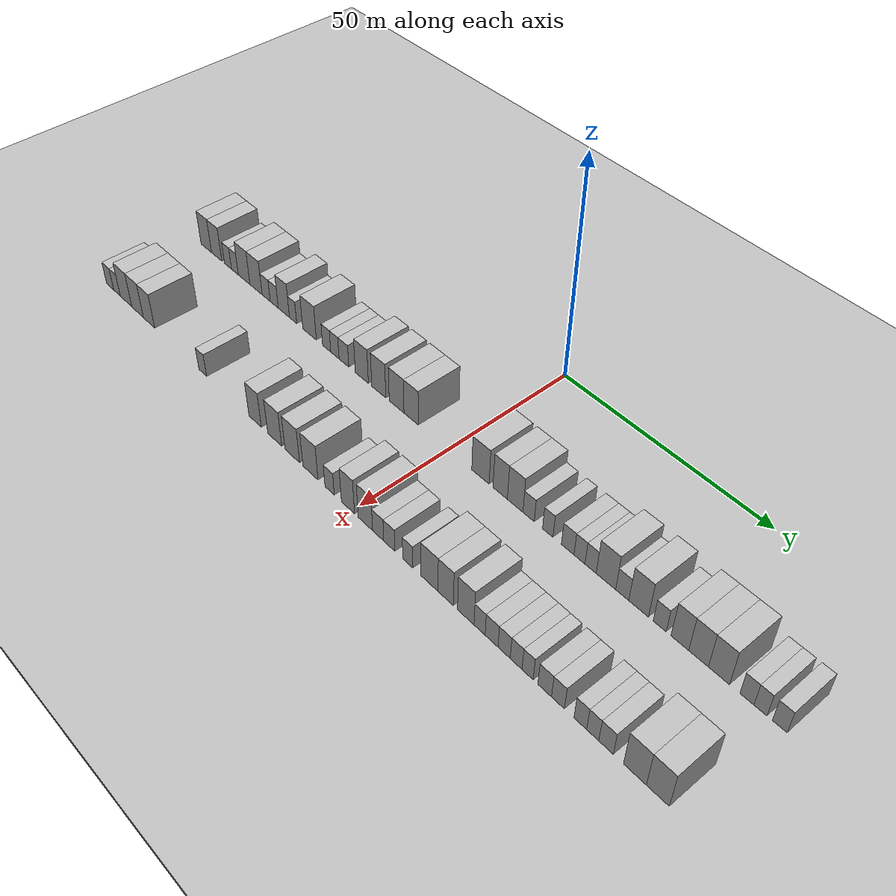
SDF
<sdf version="1.6">
 <world name="default">
  <include><name>ground_plane_1</name><uri>model://HANNAS_ground_plane</uri></include>
  <include>
   <name>ground_plane_2</name>
   <uri>model://HANNAS_ground_plane</uri>
   <pose>100 0 0  0 0 0</pose>
  </include>
  <model name="building_35">
   <static>1</static>
   <pose>25.0000 -76.7414 0 0.000000 0.000000 0.000000</pose>
   <link name="link">
    <pose>0 0 4.50 0 0 0</pose>
    <collision name="collision"><geometry><box><size>10.0000 3.9010 9.0000</size></box></geometry></collision>
    <visual name="visual">
     <cast_shadows>0</cast_shadows>
     <geometry><box><size>10.0000 3.9010 9.0000</size></box></geometry>
     <material>
      <script>
       <uri>model://HANNAS_wall/materials/scripts</uri>
       <uri>model://HANNAS_wall/materials/textures</uri>
       <name>vrc/HANNAS_wall</name>
      </script>
     </material>
    </visual>
   </link>
  </model>
  <model name="building_36">
   <static>1</static>
   <pose>25.0000 -72.8850 0 0.000000 0.000000 0.000000</pose>
   <link name="link">
    <pose>0 0 4.50 0 0 0</pose>
    <collision name="collision"><geometry><box><size>10.0000 3.8118 9.0000</size></box></geometry></collision>
    <visual name="visual">
     <cast_shadows>0</cast_shadows>
     <geometry><box><size>10.0000 3.8118 9.0000</size></box></geometry>
     <material>
      <script>
       <uri>model://HANNAS_wall/materials/scripts</uri>
       <uri>model://HANNAS_wall/materials/textures</uri>
       <name>vrc/HANNAS_wall</name>
      </script>
     </material>
    </visual>
   </link>
  </model>
  <model name="building_37">
   <static>1</static>
   <pose>25.0000 -68.7060 0 0.000000 0.000000 0.000000</pose>
   <link name="link">
    <pose>0 0 3.00 0 0 0</pose>
    <collision name="collision"><geometry><box><size>10.0000 2.5461 6.0000</size></box></geometry></collision>
    <visual name="visual">
     <cast_shadows>0</cast_shadows>
     <geometry><box><size>10.0000 2.5461 6.0000</size></box></geometry>
     <material>
      <script>
       <uri>model://HANNAS_wall/materials/scripts</uri>
       <uri>model://HANNAS_wall/materials/textures</uri>
       <name>vrc/HANNAS_wall</name>
      </script>
     </material>
    </visual>
   </link>
  </model>
  <model name="building_38">
   <static>1</static>
   <pose>25.0000 -66.1993 0 0.000000 0.000000 0.000000</pose>
   <link name="link">
    <pose>0 0 3.00 0 0 0</pose>
    <collision name="collision"><geometry><box><size>10.0000 2.4673 6.0000</size></box></geometry></collision>
    <visual name="visual">
     <cast_shadows>0</cast_shadows>
     <geometry><box><size>10.0000 2.4673 6.0000</size></box></geometry>
     <material>
      <script>
       <uri>model://HANNAS_wall/materials/scripts</uri>
       <uri>model://HANNAS_wall/materials/textures</uri>
       <name>vrc/HANNAS_wall</name>
      </script>
     </material>
    </visual>
   </link>
  </model>
  <model name="building_39">
   <static>1</static>
   <pose>25.0000 -62.8955 0 0.000000 0.000000 0.000000</pose>
   <link name="link">
    <pose>0 0 4.50 0 0 0</pose>
    <collision name="collision"><geometry><box><size>10.0000 4.1402 9.0000</size></box></geometry></collision>
    <visual name="visual">
     <cast_shadows>0</cast_shadows>
     <geometry><box><size>10.0000 4.1402 9.0000</size></box></geometry>
     <material>
      <script>
       <uri>model://HANNAS_wall/materials/scripts</uri>
       <uri>model://HANNAS_wall/materials/textures</uri>
       <name>vrc/HANNAS_wall</name>
      </script>
     </material>
    </visual>
   </link>
  </model>
  <model name="building_40">
   <static>1</static>
   <pose>25.0000 -58.6949 0 0.000000 0.000000 0.000000</pose>
   <link name="link">
    <pose>0 0 4.50 0 0 0</pose>
    <collision name="collision"><geometry><box><size>10.0000 4.2610 9.0000</size></box></geometry></collision>
    <visual name="visual">
     <cast_shadows>0</cast_shadows>
     <geometry><box><size>10.0000 4.2610 9.0000</size></box></geometry>
     <material>
      <script>
       <uri>model://HANNAS_wall/materials/scripts</uri>
       <uri>model://HANNAS_wall/materials/textures</uri>
       <name>vrc/HANNAS_wall</name>
      </script>
     </material>
    </visual>
   </link>
  </model>
  <model name="building_41">
   <static>1</static>
   <pose>25.0000 -55.1696 0 0.000000 0.000000 0.000000</pose>
   <link name="link">
    <pose>0 0 3.00 0 0 0</pose>
    <collision name="collision"><geometry><box><size>10.0000 2.7897 6.0000</size></box></geometry></collision>
    <visual name="visual">
     <cast_shadows>0</cast_shadows>
     <geometry><box><size>10.0000 2.7897 6.0000</size></box></geometry>
     <material>
      <script>
       <uri>model://HANNAS_wall/materials/scripts</uri>
       <uri>model://HANNAS_wall/materials/textures</uri>
       <name>vrc/HANNAS_wall</name>
      </script>
     </material>
    </visual>
   </link>
  </model>
  <model name="building_42">
   <static>1</static>
   <pose>25.0000 -52.3973 0 0.000000 0.000000 0.000000</pose>
   <link name="link">
    <pose>0 0 3.00 0 0 0</pose>
    <collision name="collision"><geometry><box><size>10.0000 2.7547 6.0000</size></box></geometry></collision>
    <visual name="visual">
     <cast_shadows>0</cast_shadows>
     <geometry><box><size>10.0000 2.7547 6.0000</size></box></geometry>
     <material>
      <script>
       <uri>model://HANNAS_wall/materials/scripts</uri>
       <uri>model://HANNAS_wall/materials/textures</uri>
       <name>vrc/HANNAS_wall</name>
      </script>
     </material>
    </visual>
   </link>
  </model>
  <model name="building_43">
   <static>1</static>
   <pose>25.0000 -49.1457 0 0.000000 0.000000 0.000000</pose>
   <link name="link">
    <pose>0 0 4.50 0 0 0</pose>
    <collision name="collision"><geometry><box><size>10.0000 3.7485 9.0000</size></box></geometry></collision>
    <visual name="visual">
     <cast_shadows>0</cast_shadows>
     <geometry><box><size>10.0000 3.7485 9.0000</size></box></geometry>
     <material>
      <script>
       <uri>model://HANNAS_wall/materials/scripts</uri>
       <uri>model://HANNAS_wall/materials/textures</uri>
       <name>vrc/HANNAS_wall</name>
      </script>
     </material>
    </visual>
   </link>
  </model>
  <model name="building_44">
   <static>1</static>
   <pose>25.0000 -46.0696 0 0.000000 0.000000 0.000000</pose>
   <link name="link">
    <pose>0 0 3.00 0 0 0</pose>
    <collision name="collision"><geometry><box><size>10.0000 2.4039 6.0000</size></box></geometry></collision>
    <visual name="visual">
     <cast_shadows>0</cast_shadows>
     <geometry><box><size>10.0000 2.4039 6.0000</size></box></geometry>
     <material>
      <script>
       <uri>model://HANNAS_wall/materials/scripts</uri>
       <uri>model://HANNAS_wall/materials/textures</uri>
       <name>vrc/HANNAS_wall</name>
      </script>
     </material>
    </visual>
   </link>
  </model>
  <model name="building_45">
   <static>1</static>
   <pose>25.0000 -40.6697 0 0.000000 0.000000 0.000000</pose>
   <link name="link">
    <pose>0 0 4.50 0 0 0</pose>
    <collision name="collision"><geometry><box><size>10.0000 4.3959 9.0000</size></box></geometry></collision>
    <visual name="visual">
     <cast_shadows>0</cast_shadows>
     <geometry><box><size>10.0000 4.3959 9.0000</size></box></geometry>
     <material>
      <script>
       <uri>model://HANNAS_wall/materials/scripts</uri>
       <uri>model://HANNAS_wall/materials/textures</uri>
       <name>vrc/HANNAS_wall</name>
      </script>
     </material>
    </visual>
   </link>
  </model>
  <model name="building_46">
   <static>1</static>
   <pose>25.0000 -35.1803 0 0.000000 0.000000 0.000000</pose>
   <link name="link">
    <pose>0 0 3.00 0 0 0</pose>
    <collision name="collision"><geometry><box><size>10.0000 2.5829 6.0000</size></box></geometry></collision>
    <visual name="visual">
     <cast_shadows>0</cast_shadows>
     <geometry><box><size>10.0000 2.5829 6.0000</size></box></geometry>
     <material>
      <script>
       <uri>model://HANNAS_wall/materials/scripts</uri>
       <uri>model://HANNAS_wall/materials/textures</uri>
       <name>vrc/HANNAS_wall</name>
      </script>
     </material>
    </visual>
   </link>
  </model>
  <model name="building_47">
   <static>1</static>
   <pose>25.0000 -32.5842 0 0.000000 0.000000 0.000000</pose>
   <link name="link">
    <pose>0 0 3.00 0 0 0</pose>
    <collision name="collision"><geometry><box><size>10.0000 2.6093 6.0000</size></box></geometry></collision>
    <visual name="visual">
     <cast_shadows>0</cast_shadows>
     <geometry><box><size>10.0000 2.6093 6.0000</size></box></geometry>
     <material>
      <script>
       <uri>model://HANNAS_wall/materials/scripts</uri>
       <uri>model://HANNAS_wall/materials/textures</uri>
       <name>vrc/HANNAS_wall</name>
      </script>
     </material>
    </visual>
   </link>
  </model>
  <model name="building_48">
   <static>1</static>
   <pose>25.0000 -29.7806 0 0.000000 0.000000 0.000000</pose>
   <link name="link">
    <pose>0 0 3.00 0 0 0</pose>
    <collision name="collision"><geometry><box><size>10.0000 2.9979 6.0000</size></box></geometry></collision>
    <visual name="visual">
     <cast_shadows>0</cast_shadows>
     <geometry><box><size>10.0000 2.9979 6.0000</size></box></geometry>
     <material>
      <script>
       <uri>model://HANNAS_wall/materials/scripts</uri>
       <uri>model://HANNAS_wall/materials/textures</uri>
       <name>vrc/HANNAS_wall</name>
      </script>
     </material>
    </visual>
   </link>
  </model>
  <model name="building_49">
   <static>1</static>
   <pose>25.0000 -24.3075 0 0.000000 0.000000 0.000000</pose>
   <link name="link">
    <pose>0 0 4.50 0 0 0</pose>
    <collision name="collision"><geometry><box><size>10.0000 3.9484 9.0000</size></box></geometry></collision>
    <visual name="visual">
     <cast_shadows>0</cast_shadows>
     <geometry><box><size>10.0000 3.9484 9.0000</size></box></geometry>
     <material>
      <script>
       <uri>model://HANNAS_wall/materials/scripts</uri>
       <uri>model://HANNAS_wall/materials/textures</uri>
       <name>vrc/HANNAS_wall</name>
      </script>
     </material>
    </visual>
   </link>
  </model>
  <model name="building_50">
   <static>1</static>
   <pose>25.0000 -19.2536 0 0.000000 0.000000 0.000000</pose>
   <link name="link">
    <pose>0 0 4.50 0 0 0</pose>
    <collision name="collision"><geometry><box><size>10.0000 4.1594 9.0000</size></box></geometry></collision>
    <visual name="visual">
     <cast_shadows>0</cast_shadows>
     <geometry><box><size>10.0000 4.1594 9.0000</size></box></geometry>
     <material>
      <script>
       <uri>model://HANNAS_wall/materials/scripts</uri>
       <uri>model://HANNAS_wall/materials/textures</uri>
       <name>vrc/HANNAS_wall</name>
      </script>
     </material>
    </visual>
   </link>
  </model>
  <model name="building_51">
   <static>1</static>
   <pose>25.0000 -14.0435 0 0.000000 0.000000 0.000000</pose>
   <link name="link">
    <pose>0 0 4.50 0 0 0</pose>
    <collision name="collision"><geometry><box><size>10.0000 4.2608 9.0000</size></box></geometry></collision>
    <visual name="visual">
     <cast_shadows>0</cast_shadows>
     <geometry><box><size>10.0000 4.2608 9.0000</size></box></geometry>
     <material>
      <script>
       <uri>model://HANNAS_wall/materials/scripts</uri>
       <uri>model://HANNAS_wall/materials/textures</uri>
       <name>vrc/HANNAS_wall</name>
      </script>
     </material>
    </visual>
   </link>
  </model>
  <model name="building_52">
   <static>1</static>
   <pose>25.0000 -9.8826 0 0.000000 0.000000 0.000000</pose>
   <link name="link">
    <pose>0 0 4.50 0 0 0</pose>
    <collision name="collision"><geometry><box><size>10.0000 4.0610 9.0000</size></box></geometry></collision>
    <visual name="visual">
     <cast_shadows>0</cast_shadows>
     <geometry><box><size>10.0000 4.0610 9.0000</size></box></geometry>
     <material>
      <script>
       <uri>model://HANNAS_wall/materials/scripts</uri>
       <uri>model://HANNAS_wall/materials/textures</uri>
       <name>vrc/HANNAS_wall</name>
      </script>
     </material>
    </visual>
   </link>
  </model>
  <model name="building_53">
   <static>1</static>
   <pose>25.0000 8.8941 0 0.000000 0.000000 0.000000</pose>
   <link name="link">
    <pose>0 0 4.50 0 0 0</pose>
    <collision name="collision"><geometry><box><size>10.0000 4.4974 9.0000</size></box></geometry></collision>
    <visual name="visual">
     <cast_shadows>0</cast_shadows>
     <geometry><box><size>10.0000 4.4974 9.0000</size></box></geometry>
     <material>
      <script>
       <uri>model://HANNAS_wall/materials/scripts</uri>
       <uri>model://HANNAS_wall/materials/textures</uri>
       <name>vrc/HANNAS_wall</name>
      </script>
     </material>
    </visual>
   </link>
  </model>
  <model name="building_54">
   <static>1</static>
   <pose>25.0000 13.9583 0 0.000000 0.000000 0.000000</pose>
   <link name="link">
    <pose>0 0 4.50 0 0 0</pose>
    <collision name="collision"><geometry><box><size>10.0000 3.6309 9.0000</size></box></geometry></collision>
    <visual name="visual">
     <cast_shadows>0</cast_shadows>
     <geometry><box><size>10.0000 3.6309 9.0000</size></box></geometry>
     <material>
      <script>
       <uri>model://HANNAS_wall/materials/scripts</uri>
       <uri>model://HANNAS_wall/materials/textures</uri>
       <name>vrc/HANNAS_wall</name>
      </script>
     </material>
    </visual>
   </link>
  </model>
  <model name="building_55">
   <static>1</static>
   <pose>25.0000 17.7130 0 0.000000 0.000000 0.000000</pose>
   <link name="link">
    <pose>0 0 4.50 0 0 0</pose>
    <collision name="collision"><geometry><box><size>10.0000 3.8784 9.0000</size></box></geometry></collision>
    <visual name="visual">
     <cast_shadows>0</cast_shadows>
     <geometry><box><size>10.0000 3.8784 9.0000</size></box></geometry>
     <material>
      <script>
       <uri>model://HANNAS_wall/materials/scripts</uri>
       <uri>model://HANNAS_wall/materials/textures</uri>
       <name>vrc/HANNAS_wall</name>
      </script>
     </material>
    </visual>
   </link>
  </model>
  <model name="building_56">
   <static>1</static>
   <pose>25.0000 21.0396 0 0.000000 0.000000 0.000000</pose>
   <link name="link">
    <pose>0 0 3.00 0 0 0</pose>
    <collision name="collision"><geometry><box><size>10.0000 2.7749 6.0000</size></box></geometry></collision>
    <visual name="visual">
     <cast_shadows>0</cast_shadows>
     <geometry><box><size>10.0000 2.7749 6.0000</size></box></geometry>
     <material>
      <script>
       <uri>model://HANNAS_wall/materials/scripts</uri>
       <uri>model://HANNAS_wall/materials/textures</uri>
       <name>vrc/HANNAS_wall</name>
      </script>
     </material>
    </visual>
   </link>
  </model>
  <model name="building_57">
   <static>1</static>
   <pose>25.0000 25.6698 0 0.000000 0.000000 0.000000</pose>
   <link name="link">
    <pose>0 0 3.00 0 0 0</pose>
    <collision name="collision"><geometry><box><size>10.0000 2.4854 6.0000</size></box></geometry></collision>
    <visual name="visual">
     <cast_shadows>0</cast_shadows>
     <geometry><box><size>10.0000 2.4854 6.0000</size></box></geometry>
     <material>
      <script>
       <uri>model://HANNAS_wall/materials/scripts</uri>
       <uri>model://HANNAS_wall/materials/textures</uri>
       <name>vrc/HANNAS_wall</name>
      </script>
     </material>
    </visual>
   </link>
  </model>
  <model name="building_58">
   <static>1</static>
   <pose>25.0000 30.3813 0 0.000000 0.000000 0.000000</pose>
   <link name="link">
    <pose>0 0 3.00 0 0 0</pose>
    <collision name="collision"><geometry><box><size>10.0000 2.9378 6.0000</size></box></geometry></collision>
    <visual name="visual">
     <cast_shadows>0</cast_shadows>
     <geometry><box><size>10.0000 2.9378 6.0000</size></box></geometry>
     <material>
      <script>
       <uri>model://HANNAS_wall/materials/scripts</uri>
       <uri>model://HANNAS_wall/materials/textures</uri>
       <name>vrc/HANNAS_wall</name>
      </script>
     </material>
    </visual>
   </link>
  </model>
  <model name="building_59">
   <static>1</static>
   <pose>25.0000 33.1129 0 0.000000 0.000000 0.000000</pose>
   <link name="link">
    <pose>0 0 3.00 0 0 0</pose>
    <collision name="collision"><geometry><box><size>10.0000 2.5253 6.0000</size></box></geometry></collision>
    <visual name="visual">
     <cast_shadows>0</cast_shadows>
     <geometry><box><size>10.0000 2.5253 6.0000</size></box></geometry>
     <material>
      <script>
       <uri>model://HANNAS_wall/materials/scripts</uri>
       <uri>model://HANNAS_wall/materials/textures</uri>
       <name>vrc/HANNAS_wall</name>
      </script>
     </material>
    </visual>
   </link>
  </model>
  <model name="building_60">
   <static>1</static>
   <pose>25.0000 35.6572 0 0.000000 0.000000 0.000000</pose>
   <link name="link">
    <pose>0 0 3.00 0 0 0</pose>
    <collision name="collision"><geometry><box><size>10.0000 2.5633 6.0000</size></box></geometry></collision>
    <visual name="visual">
     <cast_shadows>0</cast_shadows>
     <geometry><box><size>10.0000 2.5633 6.0000</size></box></geometry>
     <material>
      <script>
       <uri>model://HANNAS_wall/materials/scripts</uri>
       <uri>model://HANNAS_wall/materials/textures</uri>
       <name>vrc/HANNAS_wall</name>
      </script>
     </material>
    </visual>
   </link>
  </model>
  <model name="building_61">
   <static>1</static>
   <pose>25.0000 39.1148 0 0.000000 0.000000 0.000000</pose>
   <link name="link">
    <pose>0 0 4.50 0 0 0</pose>
    <collision name="collision"><geometry><box><size>10.0000 4.3519 9.0000</size></box></geometry></collision>
    <visual name="visual">
     <cast_shadows>0</cast_shadows>
     <geometry><box><size>10.0000 4.3519 9.0000</size></box></geometry>
     <material>
      <script>
       <uri>model://HANNAS_wall/materials/scripts</uri>
       <uri>model://HANNAS_wall/materials/textures</uri>
       <name>vrc/HANNAS_wall</name>
      </script>
     </material>
    </visual>
   </link>
  </model>
  <model name="building_62">
   <static>1</static>
   <pose>25.0000 42.7306 0 0.000000 0.000000 0.000000</pose>
   <link name="link">
    <pose>0 0 3.00 0 0 0</pose>
    <collision name="collision"><geometry><box><size>10.0000 2.8799 6.0000</size></box></geometry></collision>
    <visual name="visual">
     <cast_shadows>0</cast_shadows>
     <geometry><box><size>10.0000 2.8799 6.0000</size></box></geometry>
     <material>
      <script>
       <uri>model://HANNAS_wall/materials/scripts</uri>
       <uri>model://HANNAS_wall/materials/textures</uri>
       <name>vrc/HANNAS_wall</name>
      </script>
     </material>
    </visual>
   </link>
  </model>
  <model name="building_63">
   <static>1</static>
   <pose>25.0000 46.2891 0 0.000000 0.000000 0.000000</pose>
   <link name="link">
    <pose>0 0 4.50 0 0 0</pose>
    <collision name="collision"><geometry><box><size>10.0000 4.2370 9.0000</size></box></geometry></collision>
    <visual name="visual">
     <cast_shadows>0</cast_shadows>
     <geometry><box><size>10.0000 4.2370 9.0000</size></box></geometry>
     <material>
      <script>
       <uri>model://HANNAS_wall/materials/scripts</uri>
       <uri>model://HANNAS_wall/materials/textures</uri>
       <name>vrc/HANNAS_wall</name>
      </script>
     </material>
    </visual>
   </link>
  </model>
  <model name="building_64">
   <static>1</static>
   <pose>25.0000 50.7723 0 0.000000 0.000000 0.000000</pose>
   <link name="link">
    <pose>0 0 3.00 0 0 0</pose>
    <collision name="collision"><geometry><box><size>10.0000 2.7295 6.0000</size></box></geometry></collision>
    <visual name="visual">
     <cast_shadows>0</cast_shadows>
     <geometry><box><size>10.0000 2.7295 6.0000</size></box></geometry>
     <material>
      <script>
       <uri>model://HANNAS_wall/materials/scripts</uri>
       <uri>model://HANNAS_wall/materials/textures</uri>
       <name>vrc/HANNAS_wall</name>
      </script>
     </material>
    </visual>
   </link>
  </model>
  <model name="building_65">
   <static>1</static>
   <pose>25.0000 54.9607 0 0.000000 0.000000 0.000000</pose>
   <link name="link">
    <pose>0 0 4.50 0 0 0</pose>
    <collision name="collision"><geometry><box><size>10.0000 3.6472 9.0000</size></box></geometry></collision>
    <visual name="visual">
     <cast_shadows>0</cast_shadows>
     <geometry><box><size>10.0000 3.6472 9.0000</size></box></geometry>
     <material>
      <script>
       <uri>model://HANNAS_wall/materials/scripts</uri>
       <uri>model://HANNAS_wall/materials/textures</uri>
       <name>vrc/HANNAS_wall</name>
      </script>
     </material>
    </visual>
   </link>
  </model>
  <model name="building_66">
   <static>1</static>
   <pose>25.0000 58.7682 0 0.000000 0.000000 0.000000</pose>
   <link name="link">
    <pose>0 0 4.50 0 0 0</pose>
    <collision name="collision"><geometry><box><size>10.0000 3.9677 9.0000</size></box></geometry></collision>
    <visual name="visual">
     <cast_shadows>0</cast_shadows>
     <geometry><box><size>10.0000 3.9677 9.0000</size></box></geometry>
     <material>
      <script>
       <uri>model://HANNAS_wall/materials/scripts</uri>
       <uri>model://HANNAS_wall/materials/textures</uri>
       <name>vrc/HANNAS_wall</name>
      </script>
     </material>
    </visual>
   </link>
  </model>
  <model name="building_67">
   <static>1</static>
   <pose>25.0000 62.8385 0 0.000000 0.000000 0.000000</pose>
   <link name="link">
    <pose>0 0 4.50 0 0 0</pose>
    <collision name="collision"><geometry><box><size>10.0000 4.1729 9.0000</size></box></geometry></collision>
    <visual name="visual">
     <cast_shadows>0</cast_shadows>
     <geometry><box><size>10.0000 4.1729 9.0000</size></box></geometry>
     <material>
      <script>
       <uri>model://HANNAS_wall/materials/scripts</uri>
       <uri>model://HANNAS_wall/materials/textures</uri>
       <name>vrc/HANNAS_wall</name>
      </script>
     </material>
    </visual>
   </link>
  </model>
  <model name="building_68">
   <static>1</static>
   <pose>25.0000 68.2701 0 0.000000 0.000000 0.000000</pose>
   <link name="link">
    <pose>0 0 3.00 0 0 0</pose>
    <collision name="collision"><geometry><box><size>10.0000 2.6902 6.0000</size></box></geometry></collision>
    <visual name="visual">
     <cast_shadows>0</cast_shadows>
     <geometry><box><size>10.0000 2.6902 6.0000</size></box></geometry>
     <material>
      <script>
       <uri>model://HANNAS_wall/materials/scripts</uri>
       <uri>model://HANNAS_wall/materials/textures</uri>
       <name>vrc/HANNAS_wall</name>
      </script>
     </material>
    </visual>
   </link>
  </model>
  <model name="building_69">
   <static>1</static>
   <pose>25.0000 70.8492 0 0.000000 0.000000 0.000000</pose>
   <link name="link">
    <pose>0 0 3.00 0 0 0</pose>
    <collision name="collision"><geometry><box><size>10.0000 2.4681 6.0000</size></box></geometry></collision>
    <visual name="visual">
     <cast_shadows>0</cast_shadows>
     <geometry><box><size>10.0000 2.4681 6.0000</size></box></geometry>
     <material>
      <script>
       <uri>model://HANNAS_wall/materials/scripts</uri>
       <uri>model://HANNAS_wall/materials/textures</uri>
       <name>vrc/HANNAS_wall</name>
      </script>
     </material>
    </visual>
   </link>
  </model>
  <model name="building_70">
   <static>1</static>
   <pose>25.0000 74.4561 0 0.000000 0.000000 0.000000</pose>
   <link name="link">
    <pose>0 0 3.00 0 0 0</pose>
    <collision name="collision"><geometry><box><size>10.0000 2.7456 6.0000</size></box></geometry></collision>
    <visual name="visual">
     <cast_shadows>0</cast_shadows>
     <geometry><box><size>10.0000 2.7456 6.0000</size></box></geometry>
     <material>
      <script>
       <uri>model://HANNAS_wall/materials/scripts</uri>
       <uri>model://HANNAS_wall/materials/textures</uri>
       <name>vrc/HANNAS_wall</name>
      </script>
     </material>
    </visual>
   </link>
  </model>
  <model name="building_139">
   <static>1</static>
   <pose>47.0000 -78.9183 0 0.000000 0.000000 0.000000</pose>
   <link name="link">
    <pose>0 0 3.00 0 0 0</pose>
    <collision name="collision"><geometry><box><size>10.0000 2.7705 6.0000</size></box></geometry></collision>
    <visual name="visual">
     <cast_shadows>0</cast_shadows>
     <geometry><box><size>10.0000 2.7705 6.0000</size></box></geometry>
     <material>
      <script>
       <uri>model://HANNAS_wall/materials/scripts</uri>
       <uri>model://HANNAS_wall/materials/textures</uri>
       <name>vrc/HANNAS_wall</name>
      </script>
     </material>
    </visual>
   </link>
  </model>
  <model name="building_140">
   <static>1</static>
   <pose>47.0000 -76.2654 0 0.000000 0.000000 0.000000</pose>
   <link name="link">
    <pose>0 0 3.00 0 0 0</pose>
    <collision name="collision"><geometry><box><size>10.0000 2.5354 6.0000</size></box></geometry></collision>
    <visual name="visual">
     <cast_shadows>0</cast_shadows>
     <geometry><box><size>10.0000 2.5354 6.0000</size></box></geometry>
     <material>
      <script>
       <uri>model://HANNAS_wall/materials/scripts</uri>
       <uri>model://HANNAS_wall/materials/textures</uri>
       <name>vrc/HANNAS_wall</name>
      </script>
     </material>
    </visual>
   </link>
  </model>
  <model name="building_141">
   <static>1</static>
   <pose>47.0000 -72.7868 0 0.000000 0.000000 0.000000</pose>
   <link name="link">
    <pose>0 0 4.50 0 0 0</pose>
    <collision name="collision"><geometry><box><size>10.0000 4.4218 9.0000</size></box></geometry></collision>
    <visual name="visual">
     <cast_shadows>0</cast_shadows>
     <geometry><box><size>10.0000 4.4218 9.0000</size></box></geometry>
     <material>
      <script>
       <uri>model://HANNAS_wall/materials/scripts</uri>
       <uri>model://HANNAS_wall/materials/textures</uri>
       <name>vrc/HANNAS_wall</name>
      </script>
     </material>
    </visual>
   </link>
  </model>
  <model name="building_142">
   <static>1</static>
   <pose>47.0000 -68.4091 0 0.000000 0.000000 0.000000</pose>
   <link name="link">
    <pose>0 0 4.50 0 0 0</pose>
    <collision name="collision"><geometry><box><size>10.0000 4.3335 9.0000</size></box></geometry></collision>
    <visual name="visual">
     <cast_shadows>0</cast_shadows>
     <geometry><box><size>10.0000 4.3335 9.0000</size></box></geometry>
     <material>
      <script>
       <uri>model://HANNAS_wall/materials/scripts</uri>
       <uri>model://HANNAS_wall/materials/textures</uri>
       <name>vrc/HANNAS_wall</name>
      </script>
     </material>
    </visual>
   </link>
  </model>
  <model name="building_143">
   <static>1</static>
   <pose>47.0000 -64.1524 0 0.000000 0.000000 0.000000</pose>
   <link name="link">
    <pose>0 0 4.50 0 0 0</pose>
    <collision name="collision"><geometry><box><size>10.0000 4.1800 9.0000</size></box></geometry></collision>
    <visual name="visual">
     <cast_shadows>0</cast_shadows>
     <geometry><box><size>10.0000 4.1800 9.0000</size></box></geometry>
     <material>
      <script>
       <uri>model://HANNAS_wall/materials/scripts</uri>
       <uri>model://HANNAS_wall/materials/textures</uri>
       <name>vrc/HANNAS_wall</name>
      </script>
     </material>
    </visual>
   </link>
  </model>
  <model name="building_144">
   <static>1</static>
   <pose>47.0000 -45.1419 0 0.000000 0.000000 0.000000</pose>
   <link name="link">
    <pose>0 0 3.00 0 0 0</pose>
    <collision name="collision"><geometry><box><size>10.0000 2.6136 6.0000</size></box></geometry></collision>
    <visual name="visual">
     <cast_shadows>0</cast_shadows>
     <geometry><box><size>10.0000 2.6136 6.0000</size></box></geometry>
     <material>
      <script>
       <uri>model://HANNAS_wall/materials/scripts</uri>
       <uri>model://HANNAS_wall/materials/textures</uri>
       <name>vrc/HANNAS_wall</name>
      </script>
     </material>
    </visual>
   </link>
  </model>
  <model name="building_145">
   <static>1</static>
   <pose>47.0000 -28.0114 0 0.000000 0.000000 0.000000</pose>
   <link name="link">
    <pose>0 0 4.50 0 0 0</pose>
    <collision name="collision"><geometry><box><size>10.0000 3.8825 9.0000</size></box></geometry></collision>
    <visual name="visual">
     <cast_shadows>0</cast_shadows>
     <geometry><box><size>10.0000 3.8825 9.0000</size></box></geometry>
     <material>
      <script>
       <uri>model://HANNAS_wall/materials/scripts</uri>
       <uri>model://HANNAS_wall/materials/textures</uri>
       <name>vrc/HANNAS_wall</name>
      </script>
     </material>
    </visual>
   </link>
  </model>
  <model name="building_146">
   <static>1</static>
   <pose>47.0000 -21.9415 0 0.000000 0.000000 0.000000</pose>
   <link name="link">
    <pose>0 0 4.50 0 0 0</pose>
    <collision name="collision"><geometry><box><size>10.0000 4.2573 9.0000</size></box></geometry></collision>
    <visual name="visual">
     <cast_shadows>0</cast_shadows>
     <geometry><box><size>10.0000 4.2573 9.0000</size></box></geometry>
     <material>
      <script>
       <uri>model://HANNAS_wall/materials/scripts</uri>
       <uri>model://HANNAS_wall/materials/textures</uri>
       <name>vrc/HANNAS_wall</name>
      </script>
     </material>
    </visual>
   </link>
  </model>
  <model name="building_147">
   <static>1</static>
   <pose>47.0000 -16.6451 0 0.000000 0.000000 0.000000</pose>
   <link name="link">
    <pose>0 0 4.50 0 0 0</pose>
    <collision name="collision"><geometry><box><size>10.0000 4.3355 9.0000</size></box></geometry></collision>
    <visual name="visual">
     <cast_shadows>0</cast_shadows>
     <geometry><box><size>10.0000 4.3355 9.0000</size></box></geometry>
     <material>
      <script>
       <uri>model://HANNAS_wall/materials/scripts</uri>
       <uri>model://HANNAS_wall/materials/textures</uri>
       <name>vrc/HANNAS_wall</name>
      </script>
     </material>
    </visual>
   </link>
  </model>
  <model name="building_148">
   <static>1</static>
   <pose>47.0000 -11.2968 0 0.000000 0.000000 0.000000</pose>
   <link name="link">
    <pose>0 0 4.50 0 0 0</pose>
    <collision name="collision"><geometry><box><size>10.0000 4.3609 9.0000</size></box></geometry></collision>
    <visual name="visual">
     <cast_shadows>0</cast_shadows>
     <geometry><box><size>10.0000 4.3609 9.0000</size></box></geometry>
     <material>
      <script>
       <uri>model://HANNAS_wall/materials/scripts</uri>
       <uri>model://HANNAS_wall/materials/textures</uri>
       <name>vrc/HANNAS_wall</name>
      </script>
     </material>
    </visual>
   </link>
  </model>
  <model name="building_149">
   <static>1</static>
   <pose>47.0000 -5.8020 0 0.000000 0.000000 0.000000</pose>
   <link name="link">
    <pose>0 0 3.00 0 0 0</pose>
    <collision name="collision"><geometry><box><size>10.0000 2.6287 6.0000</size></box></geometry></collision>
    <visual name="visual">
     <cast_shadows>0</cast_shadows>
     <geometry><box><size>10.0000 2.6287 6.0000</size></box></geometry>
     <material>
      <script>
       <uri>model://HANNAS_wall/materials/scripts</uri>
       <uri>model://HANNAS_wall/materials/textures</uri>
       <name>vrc/HANNAS_wall</name>
      </script>
     </material>
    </visual>
   </link>
  </model>
  <model name="building_150">
   <static>1</static>
   <pose>47.0000 -0.6773 0 0.000000 0.000000 0.000000</pose>
   <link name="link">
    <pose>0 0 4.50 0 0 0</pose>
    <collision name="collision"><geometry><box><size>10.0000 3.6208 9.0000</size></box></geometry></collision>
    <visual name="visual">
     <cast_shadows>0</cast_shadows>
     <geometry><box><size>10.0000 3.6208 9.0000</size></box></geometry>
     <material>
      <script>
       <uri>model://HANNAS_wall/materials/scripts</uri>
       <uri>model://HANNAS_wall/materials/textures</uri>
       <name>vrc/HANNAS_wall</name>
      </script>
     </material>
    </visual>
   </link>
  </model>
  <model name="building_151">
   <static>1</static>
   <pose>47.0000 4.0736 0 0.000000 0.000000 0.000000</pose>
   <link name="link">
    <pose>0 0 4.50 0 0 0</pose>
    <collision name="collision"><geometry><box><size>10.0000 3.8810 9.0000</size></box></geometry></collision>
    <visual name="visual">
     <cast_shadows>0</cast_shadows>
     <geometry><box><size>10.0000 3.8810 9.0000</size></box></geometry>
     <material>
      <script>
       <uri>model://HANNAS_wall/materials/scripts</uri>
       <uri>model://HANNAS_wall/materials/textures</uri>
       <name>vrc/HANNAS_wall</name>
      </script>
     </material>
    </visual>
   </link>
  </model>
  <model name="building_152">
   <static>1</static>
   <pose>47.0000 7.4957 0 0.000000 0.000000 0.000000</pose>
   <link name="link">
    <pose>0 0 3.00 0 0 0</pose>
    <collision name="collision"><geometry><box><size>10.0000 2.9633 6.0000</size></box></geometry></collision>
    <visual name="visual">
     <cast_shadows>0</cast_shadows>
     <geometry><box><size>10.0000 2.9633 6.0000</size></box></geometry>
     <material>
      <script>
       <uri>model://HANNAS_wall/materials/scripts</uri>
       <uri>model://HANNAS_wall/materials/textures</uri>
       <name>vrc/HANNAS_wall</name>
      </script>
     </material>
    </visual>
   </link>
  </model>
  <model name="building_153">
   <static>1</static>
   <pose>47.0000 10.4398 0 0.000000 0.000000 0.000000</pose>
   <link name="link">
    <pose>0 0 3.00 0 0 0</pose>
    <collision name="collision"><geometry><box><size>10.0000 2.9249 6.0000</size></box></geometry></collision>
    <visual name="visual">
     <cast_shadows>0</cast_shadows>
     <geometry><box><size>10.0000 2.9249 6.0000</size></box></geometry>
     <material>
      <script>
       <uri>model://HANNAS_wall/materials/scripts</uri>
       <uri>model://HANNAS_wall/materials/textures</uri>
       <name>vrc/HANNAS_wall</name>
      </script>
     </material>
    </visual>
   </link>
  </model>
  <model name="building_154">
   <static>1</static>
   <pose>47.0000 15.2074 0 0.000000 0.000000 0.000000</pose>
   <link name="link">
    <pose>0 0 3.00 0 0 0</pose>
    <collision name="collision"><geometry><box><size>10.0000 2.6102 6.0000</size></box></geometry></collision>
    <visual name="visual">
     <cast_shadows>0</cast_shadows>
     <geometry><box><size>10.0000 2.6102 6.0000</size></box></geometry>
     <material>
      <script>
       <uri>model://HANNAS_wall/materials/scripts</uri>
       <uri>model://HANNAS_wall/materials/textures</uri>
       <name>vrc/HANNAS_wall</name>
      </script>
     </material>
    </visual>
   </link>
  </model>
  <model name="building_155">
   <static>1</static>
   <pose>47.0000 20.6399 0 0.000000 0.000000 0.000000</pose>
   <link name="link">
    <pose>0 0 4.50 0 0 0</pose>
    <collision name="collision"><geometry><box><size>10.0000 4.2548 9.0000</size></box></geometry></collision>
    <visual name="visual">
     <cast_shadows>0</cast_shadows>
     <geometry><box><size>10.0000 4.2548 9.0000</size></box></geometry>
     <material>
      <script>
       <uri>model://HANNAS_wall/materials/scripts</uri>
       <uri>model://HANNAS_wall/materials/textures</uri>
       <name>vrc/HANNAS_wall</name>
      </script>
     </material>
    </visual>
   </link>
  </model>
  <model name="building_156">
   <static>1</static>
   <pose>47.0000 24.6344 0 0.000000 0.000000 0.000000</pose>
   <link name="link">
    <pose>0 0 4.50 0 0 0</pose>
    <collision name="collision"><geometry><box><size>10.0000 3.7342 9.0000</size></box></geometry></collision>
    <visual name="visual">
     <cast_shadows>0</cast_shadows>
     <geometry><box><size>10.0000 3.7342 9.0000</size></box></geometry>
     <material>
      <script>
       <uri>model://HANNAS_wall/materials/scripts</uri>
       <uri>model://HANNAS_wall/materials/textures</uri>
       <name>vrc/HANNAS_wall</name>
      </script>
     </material>
    </visual>
   </link>
  </model>
  <model name="building_157">
   <static>1</static>
   <pose>47.0000 29.4622 0 0.000000 0.000000 0.000000</pose>
   <link name="link">
    <pose>0 0 4.50 0 0 0</pose>
    <collision name="collision"><geometry><box><size>10.0000 3.9213 9.0000</size></box></geometry></collision>
    <visual name="visual">
     <cast_shadows>0</cast_shadows>
     <geometry><box><size>10.0000 3.9213 9.0000</size></box></geometry>
     <material>
      <script>
       <uri>model://HANNAS_wall/materials/scripts</uri>
       <uri>model://HANNAS_wall/materials/textures</uri>
       <name>vrc/HANNAS_wall</name>
      </script>
     </material>
    </visual>
   </link>
  </model>
  <model name="building_158">
   <static>1</static>
   <pose>47.0000 32.7129 0 0.000000 0.000000 0.000000</pose>
   <link name="link">
    <pose>0 0 3.00 0 0 0</pose>
    <collision name="collision"><geometry><box><size>10.0000 2.5799 6.0000</size></box></geometry></collision>
    <visual name="visual">
     <cast_shadows>0</cast_shadows>
     <geometry><box><size>10.0000 2.5799 6.0000</size></box></geometry>
     <material>
      <script>
       <uri>model://HANNAS_wall/materials/scripts</uri>
       <uri>model://HANNAS_wall/materials/textures</uri>
       <name>vrc/HANNAS_wall</name>
      </script>
     </material>
    </visual>
   </link>
  </model>
  <model name="building_159">
   <static>1</static>
   <pose>47.0000 35.4914 0 0.000000 0.000000 0.000000</pose>
   <link name="link">
    <pose>0 0 3.00 0 0 0</pose>
    <collision name="collision"><geometry><box><size>10.0000 2.9771 6.0000</size></box></geometry></collision>
    <visual name="visual">
     <cast_shadows>0</cast_shadows>
     <geometry><box><size>10.0000 2.9771 6.0000</size></box></geometry>
     <material>
      <script>
       <uri>model://HANNAS_wall/materials/scripts</uri>
       <uri>model://HANNAS_wall/materials/textures</uri>
       <name>vrc/HANNAS_wall</name>
      </script>
     </material>
    </visual>
   </link>
  </model>
  <model name="building_160">
   <static>1</static>
   <pose>47.0000 38.3573 0 0.000000 0.000000 0.000000</pose>
   <link name="link">
    <pose>0 0 3.00 0 0 0</pose>
    <collision name="collision"><geometry><box><size>10.0000 2.7549 6.0000</size></box></geometry></collision>
    <visual name="visual">
     <cast_shadows>0</cast_shadows>
     <geometry><box><size>10.0000 2.7549 6.0000</size></box></geometry>
     <material>
      <script>
       <uri>model://HANNAS_wall/materials/scripts</uri>
       <uri>model://HANNAS_wall/materials/textures</uri>
       <name>vrc/HANNAS_wall</name>
      </script>
     </material>
    </visual>
   </link>
  </model>
  <model name="building_161">
   <static>1</static>
   <pose>47.0000 41.0435 0 0.000000 0.000000 0.000000</pose>
   <link name="link">
    <pose>0 0 3.00 0 0 0</pose>
    <collision name="collision"><geometry><box><size>10.0000 2.6175 6.0000</size></box></geometry></collision>
    <visual name="visual">
     <cast_shadows>0</cast_shadows>
     <geometry><box><size>10.0000 2.6175 6.0000</size></box></geometry>
     <material>
      <script>
       <uri>model://HANNAS_wall/materials/scripts</uri>
       <uri>model://HANNAS_wall/materials/textures</uri>
       <name>vrc/HANNAS_wall</name>
      </script>
     </material>
    </visual>
   </link>
  </model>
  <model name="building_162">
   <static>1</static>
   <pose>47.0000 43.5887 0 0.000000 0.000000 0.000000</pose>
   <link name="link">
    <pose>0 0 3.00 0 0 0</pose>
    <collision name="collision"><geometry><box><size>10.0000 2.4728 6.0000</size></box></geometry></collision>
    <visual name="visual">
     <cast_shadows>0</cast_shadows>
     <geometry><box><size>10.0000 2.4728 6.0000</size></box></geometry>
     <material>
      <script>
       <uri>model://HANNAS_wall/materials/scripts</uri>
       <uri>model://HANNAS_wall/materials/textures</uri>
       <name>vrc/HANNAS_wall</name>
      </script>
     </material>
    </visual>
   </link>
  </model>
  <model name="building_163">
   <static>1</static>
   <pose>47.0000 47.2958 0 0.000000 0.000000 0.000000</pose>
   <link name="link">
    <pose>0 0 3.00 0 0 0</pose>
    <collision name="collision"><geometry><box><size>10.0000 2.9413 6.0000</size></box></geometry></collision>
    <visual name="visual">
     <cast_shadows>0</cast_shadows>
     <geometry><box><size>10.0000 2.9413 6.0000</size></box></geometry>
     <material>
      <script>
       <uri>model://HANNAS_wall/materials/scripts</uri>
       <uri>model://HANNAS_wall/materials/textures</uri>
       <name>vrc/HANNAS_wall</name>
      </script>
     </material>
    </visual>
   </link>
  </model>
  <model name="building_164">
   <static>1</static>
   <pose>47.0000 50.1375 0 0.000000 0.000000 0.000000</pose>
   <link name="link">
    <pose>0 0 3.00 0 0 0</pose>
    <collision name="collision"><geometry><box><size>10.0000 2.7421 6.0000</size></box></geometry></collision>
    <visual name="visual">
     <cast_shadows>0</cast_shadows>
     <geometry><box><size>10.0000 2.7421 6.0000</size></box></geometry>
     <material>
      <script>
       <uri>model://HANNAS_wall/materials/scripts</uri>
       <uri>model://HANNAS_wall/materials/textures</uri>
       <name>vrc/HANNAS_wall</name>
      </script>
     </material>
    </visual>
   </link>
  </model>
  <model name="building_165">
   <static>1</static>
   <pose>47.0000 54.8158 0 0.000000 0.000000 0.000000</pose>
   <link name="link">
    <pose>0 0 3.00 0 0 0</pose>
    <collision name="collision"><geometry><box><size>10.0000 2.6144 6.0000</size></box></geometry></collision>
    <visual name="visual">
     <cast_shadows>0</cast_shadows>
     <geometry><box><size>10.0000 2.6144 6.0000</size></box></geometry>
     <material>
      <script>
       <uri>model://HANNAS_wall/materials/scripts</uri>
       <uri>model://HANNAS_wall/materials/textures</uri>
       <name>vrc/HANNAS_wall</name>
      </script>
     </material>
    </visual>
   </link>
  </model>
  <model name="building_166">
   <static>1</static>
   <pose>47.0000 57.3530 0 0.000000 0.000000 0.000000</pose>
   <link name="link">
    <pose>0 0 3.00 0 0 0</pose>
    <collision name="collision"><geometry><box><size>10.0000 2.4599 6.0000</size></box></geometry></collision>
    <visual name="visual">
     <cast_shadows>0</cast_shadows>
     <geometry><box><size>10.0000 2.4599 6.0000</size></box></geometry>
     <material>
      <script>
       <uri>model://HANNAS_wall/materials/scripts</uri>
       <uri>model://HANNAS_wall/materials/textures</uri>
       <name>vrc/HANNAS_wall</name>
      </script>
     </material>
    </visual>
   </link>
  </model>
  <model name="building_167">
   <static>1</static>
   <pose>47.0000 60.0536 0 0.000000 0.000000 0.000000</pose>
   <link name="link">
    <pose>0 0 3.00 0 0 0</pose>
    <collision name="collision"><geometry><box><size>10.0000 2.9414 6.0000</size></box></geometry></collision>
    <visual name="visual">
     <cast_shadows>0</cast_shadows>
     <geometry><box><size>10.0000 2.9414 6.0000</size></box></geometry>
     <material>
      <script>
       <uri>model://HANNAS_wall/materials/scripts</uri>
       <uri>model://HANNAS_wall/materials/textures</uri>
       <name>vrc/HANNAS_wall</name>
      </script>
     </material>
    </visual>
   </link>
  </model>
  <model name="building_168">
   <static>1</static>
   <pose>47.0000 65.7422 0 0.000000 0.000000 0.000000</pose>
   <link name="link">
    <pose>0 0 4.50 0 0 0</pose>
    <collision name="collision"><geometry><box><size>10.0000 4.4357 9.0000</size></box></geometry></collision>
    <visual name="visual">
     <cast_shadows>0</cast_shadows>
     <geometry><box><size>10.0000 4.4357 9.0000</size></box></geometry>
     <material>
      <script>
       <uri>model://HANNAS_wall/materials/scripts</uri>
       <uri>model://HANNAS_wall/materials/textures</uri>
       <name>vrc/HANNAS_wall</name>
      </script>
     </material>
    </visual>
   </link>
  </model>
  <model name="building_169">
   <static>1</static>
   <pose>47.0000 70.1384 0 0.000000 0.000000 0.000000</pose>
   <link name="link">
    <pose>0 0 4.50 0 0 0</pose>
    <collision name="collision"><geometry><box><size>10.0000 4.3567 9.0000</size></box></geometry></collision>
    <visual name="visual">
     <cast_shadows>0</cast_shadows>
     <geometry><box><size>10.0000 4.3567 9.0000</size></box></geometry>
     <material>
      <script>
       <uri>model://HANNAS_wall/materials/scripts</uri>
       <uri>model://HANNAS_wall/materials/textures</uri>
       <name>vrc/HANNAS_wall</name>
      </script>
     </material>
    </visual>
   </link>
  </model>
 </world>
</sdf>
